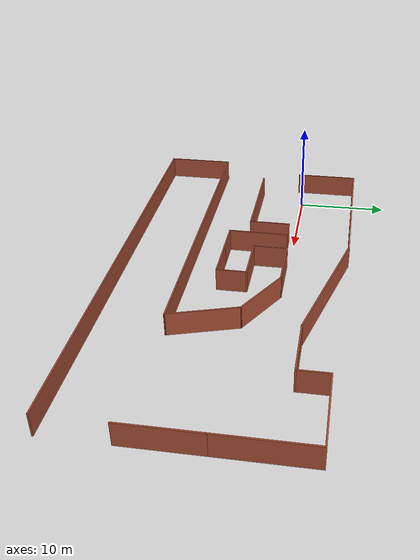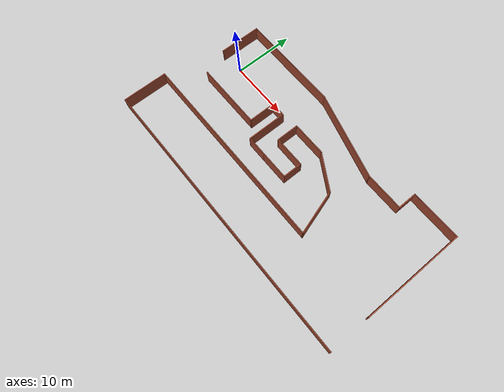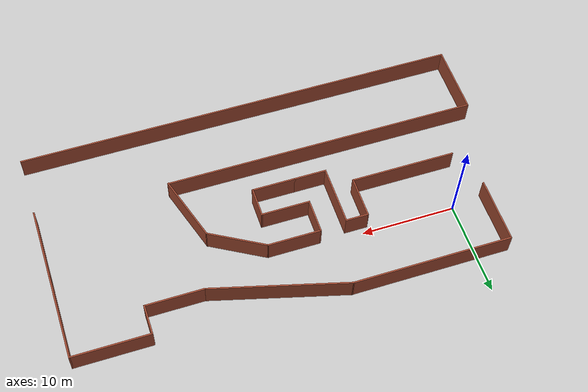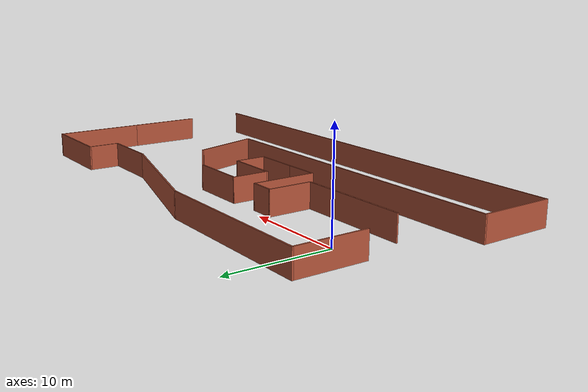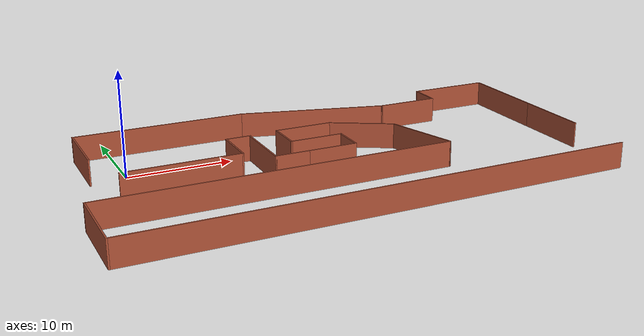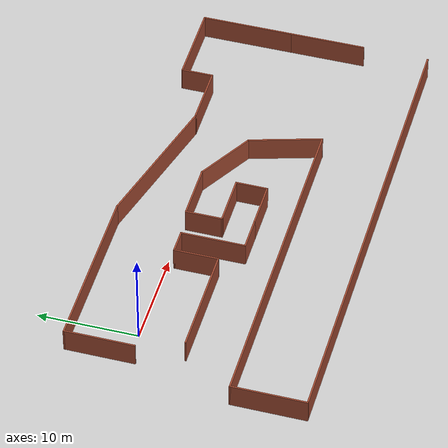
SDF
<?xml version='1.0'?>
<sdf version='1.7'>
  <model name='map'>
    <pose>18.0116 -5.77945 0 0 -0 0</pose>
    <link name='Wall_0'>
      <collision name='Wall_0_Collision'>
        <geometry>
          <box>
            <size>11.25 0.15 2.5</size>
          </box>
        </geometry>
        <pose>0 0 1.25 0 -0 0</pose>
      </collision>
      <visual name='Wall_0_Visual'>
        <pose>0 0 1.25 0 -0 0</pose>
        <geometry>
          <box>
            <size>11.25 0.15 2.5</size>
          </box>
        </geometry>
        <material>
          <script>
            <uri>file://media/materials/scripts/gazebo.material</uri>
            <name>Gazebo/Bricks</name>
          </script>
          <ambient>1 1 1 1</ambient>
        </material>
        <meta>
          <layer>0</layer>
        </meta>
      </visual>
      <pose>-14.15 0.727193 0 0 -0 0</pose>
    </link>
    <link name='Wall_1'>
      <collision name='Wall_1_Collision'>
        <geometry>
          <box>
            <size>4.5 0.15 2.5</size>
          </box>
        </geometry>
        <pose>0 0 1.25 0 -0 0</pose>
      </collision>
      <visual name='Wall_1_Visual'>
        <pose>0 0 1.25 0 -0 0</pose>
        <geometry>
          <box>
            <size>4.5 0.15 2.5</size>
          </box>
        </geometry>
        <material>
          <script>
            <uri>file://media/materials/scripts/gazebo.material</uri>
            <name>Gazebo/Bricks</name>
          </script>
          <ambient>1 1 1 1</ambient>
        </material>
        <meta>
          <layer>0</layer>
        </meta>
      </visual>
      <pose>-8.6 2.90219 0 0 -0 1.5708</pose>
    </link>
    <link name='Wall_10'>
      <collision name='Wall_10_Collision'>
        <geometry>
          <box>
            <size>3.75 0.15 2.5</size>
          </box>
        </geometry>
        <pose>0 0 1.25 0 -0 0</pose>
      </collision>
      <visual name='Wall_10_Visual'>
        <pose>0 0 1.25 0 -0 0</pose>
        <geometry>
          <box>
            <size>3.75 0.15 2.5</size>
          </box>
        </geometry>
        <material>
          <script>
            <uri>file://media/materials/scripts/gazebo.material</uri>
            <name>Gazebo/Bricks</name>
          </script>
          <ambient>1 1 1 1</ambient>
        </material>
        <meta>
          <layer>0</layer>
        </meta>
      </visual>
      <pose>-3.4 3.62719 0 0 -0 1.5708</pose>
    </link>
    <link name='Wall_11'>
      <collision name='Wall_11_Collision'>
        <geometry>
          <box>
            <size>5.75 0.15 2.5</size>
          </box>
        </geometry>
        <pose>0 0 1.25 0 -0 0</pose>
      </collision>
      <visual name='Wall_11_Visual'>
        <pose>0 0 1.25 0 -0 0</pose>
        <geometry>
          <box>
            <size>5.75 0.15 2.5</size>
          </box>
        </geometry>
        <material>
          <script>
            <uri>file://media/materials/scripts/gazebo.material</uri>
            <name>Gazebo/Bricks</name>
          </script>
          <ambient>1 1 1 1</ambient>
        </material>
        <meta>
          <layer>0</layer>
        </meta>
      </visual>
      <pose>-0.599999 5.42719 0 0 -0 0</pose>
    </link>
    <link name='Wall_14'>
      <collision name='Wall_14_Collision'>
        <geometry>
          <box>
            <size>33.75 0.15 2.5</size>
          </box>
        </geometry>
        <pose>0 0 1.25 0 -0 0</pose>
      </collision>
      <visual name='Wall_14_Visual'>
        <pose>0 0 1.25 0 -0 0</pose>
        <geometry>
          <box>
            <size>33.75 0.15 2.5</size>
          </box>
        </geometry>
        <material>
          <script>
            <uri>file://media/materials/scripts/gazebo.material</uri>
            <name>Gazebo/Bricks</name>
          </script>
          <ambient>1 1 1 1</ambient>
        </material>
        <meta>
          <layer>0</layer>
        </meta>
      </visual>
      <pose>-7 -4.67281 0 0 -0 3.14159</pose>
    </link>
    <link name='Wall_15'>
      <collision name='Wall_15_Collision'>
        <geometry>
          <box>
            <size>7.5 0.15 2.5</size>
          </box>
        </geometry>
        <pose>0 0 1.25 0 -0 0</pose>
      </collision>
      <visual name='Wall_15_Visual'>
        <pose>0 0 1.25 0 -0 0</pose>
        <geometry>
          <box>
            <size>7.5 0.15 2.5</size>
          </box>
        </geometry>
        <material>
          <script>
            <uri>file://media/materials/scripts/gazebo.material</uri>
            <name>Gazebo/Bricks</name>
          </script>
          <ambient>1 1 1 1</ambient>
        </material>
        <meta>
          <layer>0</layer>
        </meta>
      </visual>
      <pose>-23.8 -8.34781 0 0 -0 -1.5708</pose>
    </link>
    <link name='Wall_16'>
      <collision name='Wall_16_Collision'>
        <geometry>
          <box>
            <size>47.75 0.15 2.5</size>
          </box>
        </geometry>
        <pose>0 0 1.25 0 -0 0</pose>
      </collision>
      <visual name='Wall_16_Visual'>
        <pose>0 0 1.25 0 -0 0</pose>
        <geometry>
          <box>
            <size>47.75 0.15 2.5</size>
          </box>
        </geometry>
        <material>
          <script>
            <uri>file://media/materials/scripts/gazebo.material</uri>
            <name>Gazebo/Bricks</name>
          </script>
          <ambient>1 1 1 1</ambient>
        </material>
        <meta>
          <layer>0</layer>
        </meta>
      </visual>
      <pose>-1e-06 -12.0228 0 0 -0 0</pose>
    </link>
    <link name='Wall_18'>
      <collision name='Wall_18_Collision'>
        <geometry>
          <box>
            <size>8.25 0.15 2.5</size>
          </box>
        </geometry>
        <pose>0 0 1.25 0 -0 0</pose>
      </collision>
      <visual name='Wall_18_Visual'>
        <pose>0 0 1.25 0 -0 0</pose>
        <geometry>
          <box>
            <size>8.25 0.15 2.5</size>
          </box>
        </geometry>
        <material>
          <script>
            <uri>file://media/materials/scripts/gazebo.material</uri>
            <name>Gazebo/Bricks</name>
          </script>
          <ambient>1 1 1 1</ambient>
        </material>
        <meta>
          <layer>0</layer>
        </meta>
      </visual>
      <pose>19.75 11.3272 0 0 -0 3.14159</pose>
    </link>
    <link name='Wall_19'>
      <collision name='Wall_19_Collision'>
        <geometry>
          <box>
            <size>3.25 0.15 2.5</size>
          </box>
        </geometry>
        <pose>0 0 1.25 0 -0 0</pose>
      </collision>
      <visual name='Wall_19_Visual'>
        <pose>0 0 1.25 0 -0 0</pose>
        <geometry>
          <box>
            <size>3.25 0.15 2.5</size>
          </box>
        </geometry>
        <material>
          <script>
            <uri>file://media/materials/scripts/gazebo.material</uri>
            <name>Gazebo/Bricks</name>
          </script>
          <ambient>1 1 1 1</ambient>
        </material>
        <meta>
          <layer>0</layer>
        </meta>
      </visual>
      <pose>15.7 9.77719 0 0 -0 -1.5708</pose>
    </link>
    <link name='Wall_2'>
      <collision name='Wall_2_Collision'>
        <geometry>
          <box>
            <size>2.5 0.15 2.5</size>
          </box>
        </geometry>
        <pose>0 0 1.25 0 -0 0</pose>
      </collision>
      <visual name='Wall_2_Visual'>
        <pose>0 0 1.25 0 -0 0</pose>
        <geometry>
          <box>
            <size>2.5 0.15 2.5</size>
          </box>
        </geometry>
        <material>
          <script>
            <uri>file://media/materials/scripts/gazebo.material</uri>
            <name>Gazebo/Bricks</name>
          </script>
          <ambient>1 1 1 1</ambient>
        </material>
        <meta>
          <layer>0</layer>
        </meta>
      </visual>
      <pose>-7.425 5.07719 0 0 -0 0</pose>
    </link>
    <link name='Wall_20'>
      <collision name='Wall_20_Collision'>
        <geometry>
          <box>
            <size>6.25 0.15 2.5</size>
          </box>
        </geometry>
        <pose>0 0 1.25 0 -0 0</pose>
      </collision>
      <visual name='Wall_20_Visual'>
        <pose>0 0 1.25 0 -0 0</pose>
        <geometry>
          <box>
            <size>6.25 0.15 2.5</size>
          </box>
        </geometry>
        <material>
          <script>
            <uri>file://media/materials/scripts/gazebo.material</uri>
            <name>Gazebo/Bricks</name>
          </script>
          <ambient>1 1 1 1</ambient>
        </material>
        <meta>
          <layer>0</layer>
        </meta>
      </visual>
      <pose>12.65 8.22719 0 0 -0 3.14159</pose>
    </link>
    <link name='Wall_21'>
      <collision name='Wall_21_Collision'>
        <geometry>
          <box>
            <size>14.75 0.15 2.5</size>
          </box>
        </geometry>
        <pose>0 0 1.25 0 -0 0</pose>
      </collision>
      <visual name='Wall_21_Visual'>
        <pose>0 0 1.25 0 -0 0</pose>
        <geometry>
          <box>
            <size>14.75 0.15 2.5</size>
          </box>
        </geometry>
        <material>
          <script>
            <uri>file://media/materials/scripts/gazebo.material</uri>
            <name>Gazebo/Bricks</name>
          </script>
          <ambient>1 1 1 1</ambient>
        </material>
        <meta>
          <layer>0</layer>
        </meta>
      </visual>
      <pose>2.54874 10.1166 0 0 -0 2.87979</pose>
    </link>
    <link name='Wall_22'>
      <collision name='Wall_22_Collision'>
        <geometry>
          <box>
            <size>17 0.15 2.5</size>
          </box>
        </geometry>
        <pose>0 0 1.25 0 -0 0</pose>
      </collision>
      <visual name='Wall_22_Visual'>
        <pose>0 0 1.25 0 -0 0</pose>
        <geometry>
          <box>
            <size>17 0.15 2.5</size>
          </box>
        </geometry>
        <material>
          <script>
            <uri>file://media/materials/scripts/gazebo.material</uri>
            <name>Gazebo/Bricks</name>
          </script>
          <ambient>1 1 1 1</ambient>
        </material>
        <meta>
          <layer>0</layer>
        </meta>
      </visual>
      <pose>-12.9275 12.006 0 0 -0 3.14159</pose>
    </link>
    <link name='Wall_23'>
      <collision name='Wall_23_Collision'>
        <geometry>
          <box>
            <size>7 0.15 2.5</size>
          </box>
        </geometry>
        <pose>0 0 1.25 0 -0 0</pose>
      </collision>
      <visual name='Wall_23_Visual'>
        <pose>0 0 1.25 0 -0 0</pose>
        <geometry>
          <box>
            <size>7 0.15 2.5</size>
          </box>
        </geometry>
        <material>
          <script>
            <uri>file://media/materials/scripts/gazebo.material</uri>
            <name>Gazebo/Bricks</name>
          </script>
          <ambient>1 1 1 1</ambient>
        </material>
        <meta>
          <layer>0</layer>
        </meta>
      </visual>
      <pose>-21.3525 8.58095 0 0 -0 -1.5708</pose>
    </link>
    <link name='Wall_26'>
      <collision name='Wall_26_Collision'>
        <geometry>
          <box>
            <size>9.25 0.15 2.5</size>
          </box>
        </geometry>
        <pose>0 0 1.25 0 -0 0</pose>
      </collision>
      <visual name='Wall_26_Visual'>
        <pose>0 0 1.25 0 -0 0</pose>
        <geometry>
          <box>
            <size>9.25 0.15 2.5</size>
          </box>
        </geometry>
        <material>
          <script>
            <uri>file://media/materials/scripts/gazebo.material</uri>
            <name>Gazebo/Bricks</name>
          </script>
          <ambient>1 1 1 1</ambient>
        </material>
        <meta>
          <layer>0</layer>
        </meta>
      </visual>
      <pose>23.8 6.77719 0 0 -0 -1.5708</pose>
    </link>
    <link name='Wall_27'>
      <collision name='Wall_27_Collision'>
        <geometry>
          <box>
            <size>7.75 0.15 2.5</size>
          </box>
        </geometry>
        <pose>0 0 1.25 0 -0 0</pose>
      </collision>
      <visual name='Wall_27_Visual'>
        <pose>0 0 1.25 0 -0 0</pose>
        <geometry>
          <box>
            <size>7.75 0.15 2.5</size>
          </box>
        </geometry>
        <material>
          <script>
            <uri>file://media/materials/scripts/gazebo.material</uri>
            <name>Gazebo/Bricks</name>
          </script>
          <ambient>1 1 1 1</ambient>
        </material>
        <meta>
          <layer>0</layer>
        </meta>
      </visual>
      <pose>23.8 -1.57281 0 0 -0 -1.5708</pose>
    </link>
    <link name='Wall_29'>
      <collision name='Wall_29_Collision'>
        <geometry>
          <box>
            <size>6.5 0.15 2.5</size>
          </box>
        </geometry>
        <pose>0 0 1.25 0 -0 0</pose>
      </collision>
      <visual name='Wall_29_Visual'>
        <pose>0 0 1.25 0 -0 0</pose>
        <geometry>
          <box>
            <size>6.5 0.15 2.5</size>
          </box>
        </geometry>
        <material>
          <script>
            <uri>file://media/materials/scripts/gazebo.material</uri>
            <name>Gazebo/Bricks</name>
          </script>
          <ambient>1 1 1 1</ambient>
        </material>
        <meta>
          <layer>0</layer>
        </meta>
      </visual>
      <pose>4.94963 3.83969 0 0 -0 -0.523599</pose>
    </link>
    <link name='Wall_3'>
      <collision name='Wall_3_Collision'>
        <geometry>
          <box>
            <size>6.5 0.15 2.5</size>
          </box>
        </geometry>
        <pose>0 0 1.25 0 -0 0</pose>
      </collision>
      <visual name='Wall_3_Visual'>
        <pose>0 0 1.25 0 -0 0</pose>
        <geometry>
          <box>
            <size>6.5 0.15 2.5</size>
          </box>
        </geometry>
        <material>
          <script>
            <uri>file://media/materials/scripts/gazebo.material</uri>
            <name>Gazebo/Bricks</name>
          </script>
          <ambient>1 1 1 1</ambient>
        </material>
        <meta>
          <layer>0</layer>
        </meta>
      </visual>
      <pose>-6.25 1.90219 0 0 -0 -1.5708</pose>
    </link>
    <link name='Wall_33'>
      <collision name='Wall_33_Collision'>
        <geometry>
          <box>
            <size>7.38662 0.15 2.5</size>
          </box>
        </geometry>
        <pose>0 0 1.25 0 -0 0</pose>
      </collision>
      <visual name='Wall_33_Visual'>
        <pose>0 0 1.25 0 -0 0</pose>
        <geometry>
          <box>
            <size>7.38662 0.15 2.5</size>
          </box>
        </geometry>
        <material>
          <script>
            <uri>file://media/materials/scripts/gazebo.material</uri>
            <name>Gazebo/Bricks</name>
          </script>
          <ambient>1 1 1 1</ambient>
        </material>
        <meta>
          <layer>0</layer>
        </meta>
      </visual>
      <pose>8.74963 -1.21031 0 0 -0 -1.27626</pose>
    </link>
    <link name='Wall_4'>
      <collision name='Wall_4_Collision'>
        <geometry>
          <box>
            <size>3.5 0.15 2.5</size>
          </box>
        </geometry>
        <pose>0 0 1.25 0 -0 0</pose>
      </collision>
      <visual name='Wall_4_Visual'>
        <pose>0 0 1.25 0 -0 0</pose>
        <geometry>
          <box>
            <size>3.5 0.15 2.5</size>
          </box>
        </geometry>
        <material>
          <script>
            <uri>file://media/materials/scripts/gazebo.material</uri>
            <name>Gazebo/Bricks</name>
          </script>
          <ambient>1 1 1 1</ambient>
        </material>
        <meta>
          <layer>0</layer>
        </meta>
      </visual>
      <pose>-4.575 -1.27281 0 0 -0 0</pose>
    </link>
    <link name='Wall_7'>
      <collision name='Wall_7_Collision'>
        <geometry>
          <box>
            <size>4.75 0.15 2.5</size>
          </box>
        </geometry>
        <pose>0 0 1.25 0 -0 0</pose>
      </collision>
      <visual name='Wall_7_Visual'>
        <pose>0 0 1.25 0 -0 0</pose>
        <geometry>
          <box>
            <size>4.75 0.15 2.5</size>
          </box>
        </geometry>
        <material>
          <script>
            <uri>file://media/materials/scripts/gazebo.material</uri>
            <name>Gazebo/Bricks</name>
          </script>
          <ambient>1 1 1 1</ambient>
        </material>
        <meta>
          <layer>0</layer>
        </meta>
      </visual>
      <pose>-0.599999 -1.27281 0 0 -0 0</pose>
    </link>
    <link name='Wall_8'>
      <collision name='Wall_8_Collision'>
        <geometry>
          <box>
            <size>3.25 0.15 2.5</size>
          </box>
        </geometry>
        <pose>0 0 1.25 0 -0 0</pose>
      </collision>
      <visual name='Wall_8_Visual'>
        <pose>0 0 1.25 0 -0 0</pose>
        <geometry>
          <box>
            <size>3.25 0.15 2.5</size>
          </box>
        </geometry>
        <material>
          <script>
            <uri>file://media/materials/scripts/gazebo.material</uri>
            <name>Gazebo/Bricks</name>
          </script>
          <ambient>1 1 1 1</ambient>
        </material>
        <meta>
          <layer>0</layer>
        </meta>
      </visual>
      <pose>1.7 0.277193 0 0 -0 1.5708</pose>
    </link>
    <link name='Wall_9'>
      <collision name='Wall_9_Collision'>
        <geometry>
          <box>
            <size>5.25 0.15 2.5</size>
          </box>
        </geometry>
        <pose>0 0 1.25 0 -0 0</pose>
      </collision>
      <visual name='Wall_9_Visual'>
        <pose>0 0 1.25 0 -0 0</pose>
        <geometry>
          <box>
            <size>5.25 0.15 2.5</size>
          </box>
        </geometry>
        <material>
          <script>
            <uri>file://media/materials/scripts/gazebo.material</uri>
            <name>Gazebo/Bricks</name>
          </script>
          <ambient>1 1 1 1</ambient>
        </material>
        <meta>
          <layer>0</layer>
        </meta>
      </visual>
      <pose>-0.849999 1.82719 0 0 -0 3.14159</pose>
    </link>
    <static>1</static>
  </model>
</sdf>
